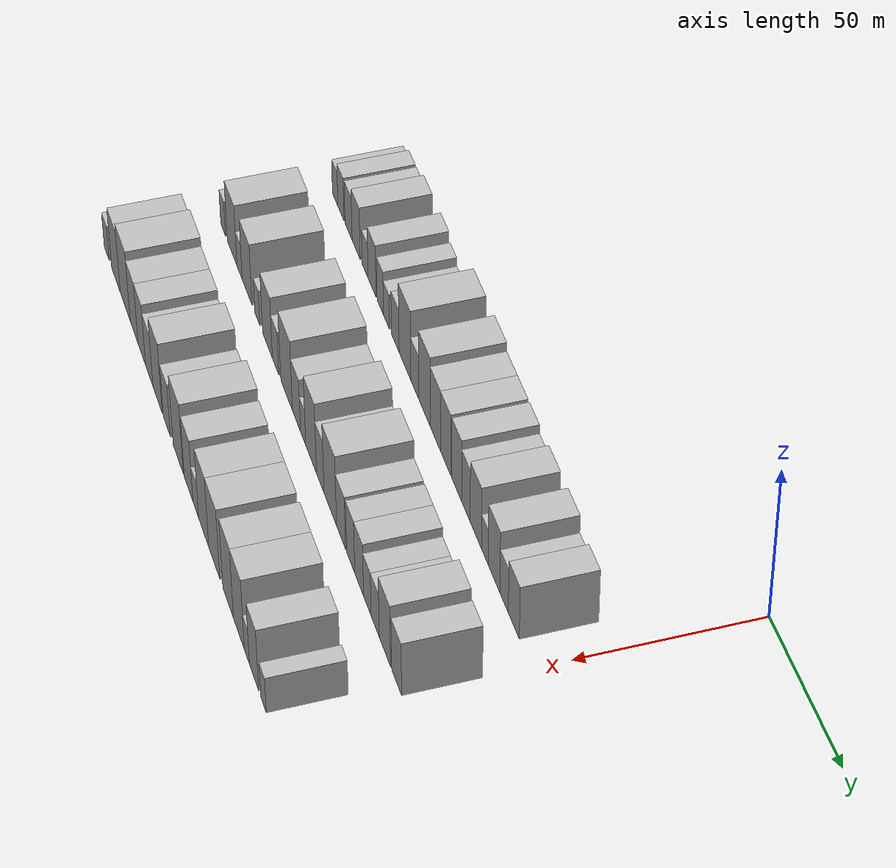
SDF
<sdf version="1.6">
 <world name="default">
  <model name="building_19">
   <static>1</static>
   <pose>50.0000 -178.0555 0 0.000000 0.000000 0.000000</pose>
   <link name="link">
    <pose>0 0 6.00 0 0 0</pose>
    <collision name="collision"><geometry><box><size>20.0000 5.5461 12.0000</size></box></geometry></collision>
    <visual name="visual">
     <cast_shadows>0</cast_shadows>
     <geometry><box><size>20.0000 5.5461 12.0000</size></box></geometry>
     <material>
      <script>
       <uri>model://HANNAS_wall/materials/scripts</uri>
       <uri>model://HANNAS_wall/materials/textures</uri>
       <name>vrc/HANNAS_wall</name>
      </script>
     </material>
    </visual>
   </link>
  </model>
  <model name="building_20">
   <static>1</static>
   <pose>50.0000 -172.1351 0 0.000000 0.000000 0.000000</pose>
   <link name="link">
    <pose>0 0 7.50 0 0 0</pose>
    <collision name="collision"><geometry><box><size>20.0000 6.2947 15.0000</size></box></geometry></collision>
    <visual name="visual">
     <cast_shadows>0</cast_shadows>
     <geometry><box><size>20.0000 6.2947 15.0000</size></box></geometry>
     <material>
      <script>
       <uri>model://HANNAS_wall/materials/scripts</uri>
       <uri>model://HANNAS_wall/materials/textures</uri>
       <name>vrc/HANNAS_wall</name>
      </script>
     </material>
    </visual>
   </link>
  </model>
  <model name="building_21">
   <static>1</static>
   <pose>50.0000 -164.4153 0 0.000000 0.000000 0.000000</pose>
   <link name="link">
    <pose>0 0 7.50 0 0 0</pose>
    <collision name="collision"><geometry><box><size>20.0000 7.1448 15.0000</size></box></geometry></collision>
    <visual name="visual">
     <cast_shadows>0</cast_shadows>
     <geometry><box><size>20.0000 7.1448 15.0000</size></box></geometry>
     <material>
      <script>
       <uri>model://HANNAS_wall/materials/scripts</uri>
       <uri>model://HANNAS_wall/materials/textures</uri>
       <name>vrc/HANNAS_wall</name>
      </script>
     </material>
    </visual>
   </link>
  </model>
  <model name="building_22">
   <static>1</static>
   <pose>50.0000 -156.8310 0 0.000000 0.000000 0.000000</pose>
   <link name="link">
    <pose>0 0 9.00 0 0 0</pose>
    <collision name="collision"><geometry><box><size>20.0000 8.0239 18.0000</size></box></geometry></collision>
    <visual name="visual">
     <cast_shadows>0</cast_shadows>
     <geometry><box><size>20.0000 8.0239 18.0000</size></box></geometry>
     <material>
      <script>
       <uri>model://HANNAS_wall/materials/scripts</uri>
       <uri>model://HANNAS_wall/materials/textures</uri>
       <name>vrc/HANNAS_wall</name>
      </script>
     </material>
    </visual>
   </link>
  </model>
  <model name="building_23">
   <static>1</static>
   <pose>50.0000 -147.9092 0 0.000000 0.000000 0.000000</pose>
   <link name="link">
    <pose>0 0 6.00 0 0 0</pose>
    <collision name="collision"><geometry><box><size>20.0000 5.8197 12.0000</size></box></geometry></collision>
    <visual name="visual">
     <cast_shadows>0</cast_shadows>
     <geometry><box><size>20.0000 5.8197 12.0000</size></box></geometry>
     <material>
      <script>
       <uri>model://HANNAS_wall/materials/scripts</uri>
       <uri>model://HANNAS_wall/materials/textures</uri>
       <name>vrc/HANNAS_wall</name>
      </script>
     </material>
    </visual>
   </link>
  </model>
  <model name="building_24">
   <static>1</static>
   <pose>50.0000 -141.1100 0 0.000000 0.000000 0.000000</pose>
   <link name="link">
    <pose>0 0 9.00 0 0 0</pose>
    <collision name="collision"><geometry><box><size>20.0000 7.7786 18.0000</size></box></geometry></collision>
    <visual name="visual">
     <cast_shadows>0</cast_shadows>
     <geometry><box><size>20.0000 7.7786 18.0000</size></box></geometry>
     <material>
      <script>
       <uri>model://HANNAS_wall/materials/scripts</uri>
       <uri>model://HANNAS_wall/materials/textures</uri>
       <name>vrc/HANNAS_wall</name>
      </script>
     </material>
    </visual>
   </link>
  </model>
  <model name="building_25">
   <static>1</static>
   <pose>50.0000 -133.1322 0 0.000000 0.000000 0.000000</pose>
   <link name="link">
    <pose>0 0 7.50 0 0 0</pose>
    <collision name="collision"><geometry><box><size>20.0000 6.1768 15.0000</size></box></geometry></collision>
    <visual name="visual">
     <cast_shadows>0</cast_shadows>
     <geometry><box><size>20.0000 6.1768 15.0000</size></box></geometry>
     <material>
      <script>
       <uri>model://HANNAS_wall/materials/scripts</uri>
       <uri>model://HANNAS_wall/materials/textures</uri>
       <name>vrc/HANNAS_wall</name>
      </script>
     </material>
    </visual>
   </link>
  </model>
  <model name="building_26">
   <static>1</static>
   <pose>50.0000 -127.1928 0 0.000000 0.000000 0.000000</pose>
   <link name="link">
    <pose>0 0 6.00 0 0 0</pose>
    <collision name="collision"><geometry><box><size>20.0000 5.7021 12.0000</size></box></geometry></collision>
    <visual name="visual">
     <cast_shadows>0</cast_shadows>
     <geometry><box><size>20.0000 5.7021 12.0000</size></box></geometry>
     <material>
      <script>
       <uri>model://HANNAS_wall/materials/scripts</uri>
       <uri>model://HANNAS_wall/materials/textures</uri>
       <name>vrc/HANNAS_wall</name>
      </script>
     </material>
    </visual>
   </link>
  </model>
  <model name="building_27">
   <static>1</static>
   <pose>50.0000 -118.7382 0 0.000000 0.000000 0.000000</pose>
   <link name="link">
    <pose>0 0 7.50 0 0 0</pose>
    <collision name="collision"><geometry><box><size>20.0000 7.2071 15.0000</size></box></geometry></collision>
    <visual name="visual">
     <cast_shadows>0</cast_shadows>
     <geometry><box><size>20.0000 7.2071 15.0000</size></box></geometry>
     <material>
      <script>
       <uri>model://HANNAS_wall/materials/scripts</uri>
       <uri>model://HANNAS_wall/materials/textures</uri>
       <name>vrc/HANNAS_wall</name>
      </script>
     </material>
    </visual>
   </link>
  </model>
  <model name="building_28">
   <static>1</static>
   <pose>50.0000 -109.6479 0 0.000000 0.000000 0.000000</pose>
   <link name="link">
    <pose>0 0 12.00 0 0 0</pose>
    <collision name="collision"><geometry><box><size>20.0000 10.9736 24.0000</size></box></geometry></collision>
    <visual name="visual">
     <cast_shadows>0</cast_shadows>
     <geometry><box><size>20.0000 10.9736 24.0000</size></box></geometry>
     <material>
      <script>
       <uri>model://HANNAS_wall/materials/scripts</uri>
       <uri>model://HANNAS_wall/materials/textures</uri>
       <name>vrc/HANNAS_wall</name>
      </script>
     </material>
    </visual>
   </link>
  </model>
  <model name="building_29">
   <static>1</static>
   <pose>50.0000 -100.4507 0 0.000000 0.000000 0.000000</pose>
   <link name="link">
    <pose>0 0 7.50 0 0 0</pose>
    <collision name="collision"><geometry><box><size>20.0000 7.4209 15.0000</size></box></geometry></collision>
    <visual name="visual">
     <cast_shadows>0</cast_shadows>
     <geometry><box><size>20.0000 7.4209 15.0000</size></box></geometry>
     <material>
      <script>
       <uri>model://HANNAS_wall/materials/scripts</uri>
       <uri>model://HANNAS_wall/materials/textures</uri>
       <name>vrc/HANNAS_wall</name>
      </script>
     </material>
    </visual>
   </link>
  </model>
  <model name="building_30">
   <static>1</static>
   <pose>50.0000 -91.4822 0 0.000000 0.000000 0.000000</pose>
   <link name="link">
    <pose>0 0 12.00 0 0 0</pose>
    <collision name="collision"><geometry><box><size>20.0000 10.5161 24.0000</size></box></geometry></collision>
    <visual name="visual">
     <cast_shadows>0</cast_shadows>
     <geometry><box><size>20.0000 10.5161 24.0000</size></box></geometry>
     <material>
      <script>
       <uri>model://HANNAS_wall/materials/scripts</uri>
       <uri>model://HANNAS_wall/materials/textures</uri>
       <name>vrc/HANNAS_wall</name>
      </script>
     </material>
    </visual>
   </link>
  </model>
  <model name="building_31">
   <static>1</static>
   <pose>50.0000 -81.6602 0 0.000000 0.000000 0.000000</pose>
   <link name="link">
    <pose>0 0 10.50 0 0 0</pose>
    <collision name="collision"><geometry><box><size>20.0000 9.1278 21.0000</size></box></geometry></collision>
    <visual name="visual">
     <cast_shadows>0</cast_shadows>
     <geometry><box><size>20.0000 9.1278 21.0000</size></box></geometry>
     <material>
      <script>
       <uri>model://HANNAS_wall/materials/scripts</uri>
       <uri>model://HANNAS_wall/materials/textures</uri>
       <name>vrc/HANNAS_wall</name>
      </script>
     </material>
    </visual>
   </link>
  </model>
  <model name="building_32">
   <static>1</static>
   <pose>50.0000 -72.5824 0 0.000000 0.000000 0.000000</pose>
   <link name="link">
    <pose>0 0 10.50 0 0 0</pose>
    <collision name="collision"><geometry><box><size>20.0000 9.0279 21.0000</size></box></geometry></collision>
    <visual name="visual">
     <cast_shadows>0</cast_shadows>
     <geometry><box><size>20.0000 9.0279 21.0000</size></box></geometry>
     <material>
      <script>
       <uri>model://HANNAS_wall/materials/scripts</uri>
       <uri>model://HANNAS_wall/materials/textures</uri>
       <name>vrc/HANNAS_wall</name>
      </script>
     </material>
    </visual>
   </link>
  </model>
  <model name="building_33">
   <static>1</static>
   <pose>50.0000 -62.8511 0 0.000000 0.000000 0.000000</pose>
   <link name="link">
    <pose>0 0 10.50 0 0 0</pose>
    <collision name="collision"><geometry><box><size>20.0000 8.4345 21.0000</size></box></geometry></collision>
    <visual name="visual">
     <cast_shadows>0</cast_shadows>
     <geometry><box><size>20.0000 8.4345 21.0000</size></box></geometry>
     <material>
      <script>
       <uri>model://HANNAS_wall/materials/scripts</uri>
       <uri>model://HANNAS_wall/materials/textures</uri>
       <name>vrc/HANNAS_wall</name>
      </script>
     </material>
    </visual>
   </link>
  </model>
  <model name="building_34">
   <static>1</static>
   <pose>50.0000 -54.9011 0 0.000000 0.000000 0.000000</pose>
   <link name="link">
    <pose>0 0 9.00 0 0 0</pose>
    <collision name="collision"><geometry><box><size>20.0000 7.4656 18.0000</size></box></geometry></collision>
    <visual name="visual">
     <cast_shadows>0</cast_shadows>
     <geometry><box><size>20.0000 7.4656 18.0000</size></box></geometry>
     <material>
      <script>
       <uri>model://HANNAS_wall/materials/scripts</uri>
       <uri>model://HANNAS_wall/materials/textures</uri>
       <name>vrc/HANNAS_wall</name>
      </script>
     </material>
    </visual>
   </link>
  </model>
  <model name="building_35">
   <static>1</static>
   <pose>50.0000 -46.3791 0 0.000000 0.000000 0.000000</pose>
   <link name="link">
    <pose>0 0 10.50 0 0 0</pose>
    <collision name="collision"><geometry><box><size>20.0000 9.5783 21.0000</size></box></geometry></collision>
    <visual name="visual">
     <cast_shadows>0</cast_shadows>
     <geometry><box><size>20.0000 9.5783 21.0000</size></box></geometry>
     <material>
      <script>
       <uri>model://HANNAS_wall/materials/scripts</uri>
       <uri>model://HANNAS_wall/materials/textures</uri>
       <name>vrc/HANNAS_wall</name>
      </script>
     </material>
    </visual>
   </link>
  </model>
  <model name="building_36">
   <static>1</static>
   <pose>50.0000 -38.7108 0 0.000000 0.000000 0.000000</pose>
   <link name="link">
    <pose>0 0 6.00 0 0 0</pose>
    <collision name="collision"><geometry><box><size>20.0000 5.7583 12.0000</size></box></geometry></collision>
    <visual name="visual">
     <cast_shadows>0</cast_shadows>
     <geometry><box><size>20.0000 5.7583 12.0000</size></box></geometry>
     <material>
      <script>
       <uri>model://HANNAS_wall/materials/scripts</uri>
       <uri>model://HANNAS_wall/materials/textures</uri>
       <name>vrc/HANNAS_wall</name>
      </script>
     </material>
    </visual>
   </link>
  </model>
  <model name="building_37">
   <static>1</static>
   <pose>50.0000 -30.9705 0 0.000000 0.000000 0.000000</pose>
   <link name="link">
    <pose>0 0 10.50 0 0 0</pose>
    <collision name="collision"><geometry><box><size>20.0000 9.7223 21.0000</size></box></geometry></collision>
    <visual name="visual">
     <cast_shadows>0</cast_shadows>
     <geometry><box><size>20.0000 9.7223 21.0000</size></box></geometry>
     <material>
      <script>
       <uri>model://HANNAS_wall/materials/scripts</uri>
       <uri>model://HANNAS_wall/materials/textures</uri>
       <name>vrc/HANNAS_wall</name>
      </script>
     </material>
    </visual>
   </link>
  </model>
  <model name="building_38">
   <static>1</static>
   <pose>50.0000 -22.6465 0 0.000000 0.000000 0.000000</pose>
   <link name="link">
    <pose>0 0 7.50 0 0 0</pose>
    <collision name="collision"><geometry><box><size>20.0000 6.9256 15.0000</size></box></geometry></collision>
    <visual name="visual">
     <cast_shadows>0</cast_shadows>
     <geometry><box><size>20.0000 6.9256 15.0000</size></box></geometry>
     <material>
      <script>
       <uri>model://HANNAS_wall/materials/scripts</uri>
       <uri>model://HANNAS_wall/materials/textures</uri>
       <name>vrc/HANNAS_wall</name>
      </script>
     </material>
    </visual>
   </link>
  </model>
  <model name="building_39">
   <static>1</static>
   <pose>50.0000 -14.6906 0 0.000000 0.000000 0.000000</pose>
   <link name="link">
    <pose>0 0 9.00 0 0 0</pose>
    <collision name="collision"><geometry><box><size>20.0000 8.9863 18.0000</size></box></geometry></collision>
    <visual name="visual">
     <cast_shadows>0</cast_shadows>
     <geometry><box><size>20.0000 8.9863 18.0000</size></box></geometry>
     <material>
      <script>
       <uri>model://HANNAS_wall/materials/scripts</uri>
       <uri>model://HANNAS_wall/materials/textures</uri>
       <name>vrc/HANNAS_wall</name>
      </script>
     </material>
    </visual>
   </link>
  </model>
  <model name="building_97">
   <static>1</static>
   <pose>82.0000 -174.7247 0 0.000000 0.000000 0.000000</pose>
   <link name="link">
    <pose>0 0 6.00 0 0 0</pose>
    <collision name="collision"><geometry><box><size>20.0000 5.1894 12.0000</size></box></geometry></collision>
    <visual name="visual">
     <cast_shadows>0</cast_shadows>
     <geometry><box><size>20.0000 5.1894 12.0000</size></box></geometry>
     <material>
      <script>
       <uri>model://HANNAS_wall/materials/scripts</uri>
       <uri>model://HANNAS_wall/materials/textures</uri>
       <name>vrc/HANNAS_wall</name>
      </script>
     </material>
    </visual>
   </link>
  </model>
  <model name="building_98">
   <static>1</static>
   <pose>82.0000 -164.8907 0 0.000000 0.000000 0.000000</pose>
   <link name="link">
    <pose>0 0 10.50 0 0 0</pose>
    <collision name="collision"><geometry><box><size>20.0000 10.4786 21.0000</size></box></geometry></collision>
    <visual name="visual">
     <cast_shadows>0</cast_shadows>
     <geometry><box><size>20.0000 10.4786 21.0000</size></box></geometry>
     <material>
      <script>
       <uri>model://HANNAS_wall/materials/scripts</uri>
       <uri>model://HANNAS_wall/materials/textures</uri>
       <name>vrc/HANNAS_wall</name>
      </script>
     </material>
    </visual>
   </link>
  </model>
  <model name="building_99">
   <static>1</static>
   <pose>82.0000 -156.8364 0 0.000000 0.000000 0.000000</pose>
   <link name="link">
    <pose>0 0 6.00 0 0 0</pose>
    <collision name="collision"><geometry><box><size>20.0000 5.6300 12.0000</size></box></geometry></collision>
    <visual name="visual">
     <cast_shadows>0</cast_shadows>
     <geometry><box><size>20.0000 5.6300 12.0000</size></box></geometry>
     <material>
      <script>
       <uri>model://HANNAS_wall/materials/scripts</uri>
       <uri>model://HANNAS_wall/materials/textures</uri>
       <name>vrc/HANNAS_wall</name>
      </script>
     </material>
    </visual>
   </link>
  </model>
  <model name="building_100">
   <static>1</static>
   <pose>82.0000 -148.7913 0 0.000000 0.000000 0.000000</pose>
   <link name="link">
    <pose>0 0 10.50 0 0 0</pose>
    <collision name="collision"><geometry><box><size>20.0000 10.4603 21.0000</size></box></geometry></collision>
    <visual name="visual">
     <cast_shadows>0</cast_shadows>
     <geometry><box><size>20.0000 10.4603 21.0000</size></box></geometry>
     <material>
      <script>
       <uri>model://HANNAS_wall/materials/scripts</uri>
       <uri>model://HANNAS_wall/materials/textures</uri>
       <name>vrc/HANNAS_wall</name>
      </script>
     </material>
    </visual>
   </link>
  </model>
  <model name="building_101">
   <static>1</static>
   <pose>82.0000 -137.9452 0 0.000000 0.000000 0.000000</pose>
   <link name="link">
    <pose>0 0 6.00 0 0 0</pose>
    <collision name="collision"><geometry><box><size>20.0000 5.2318 12.0000</size></box></geometry></collision>
    <visual name="visual">
     <cast_shadows>0</cast_shadows>
     <geometry><box><size>20.0000 5.2318 12.0000</size></box></geometry>
     <material>
      <script>
       <uri>model://HANNAS_wall/materials/scripts</uri>
       <uri>model://HANNAS_wall/materials/textures</uri>
       <name>vrc/HANNAS_wall</name>
      </script>
     </material>
    </visual>
   </link>
  </model>
  <model name="building_102">
   <static>1</static>
   <pose>82.0000 -127.3140 0 0.000000 0.000000 0.000000</pose>
   <link name="link">
    <pose>0 0 10.50 0 0 0</pose>
    <collision name="collision"><geometry><box><size>20.0000 10.0307 21.0000</size></box></geometry></collision>
    <visual name="visual">
     <cast_shadows>0</cast_shadows>
     <geometry><box><size>20.0000 10.0307 21.0000</size></box></geometry>
     <material>
      <script>
       <uri>model://HANNAS_wall/materials/scripts</uri>
       <uri>model://HANNAS_wall/materials/textures</uri>
       <name>vrc/HANNAS_wall</name>
      </script>
     </material>
    </visual>
   </link>
  </model>
  <model name="building_103">
   <static>1</static>
   <pose>82.0000 -118.9859 0 0.000000 0.000000 0.000000</pose>
   <link name="link">
    <pose>0 0 7.50 0 0 0</pose>
    <collision name="collision"><geometry><box><size>20.0000 6.6254 15.0000</size></box></geometry></collision>
    <visual name="visual">
     <cast_shadows>0</cast_shadows>
     <geometry><box><size>20.0000 6.6254 15.0000</size></box></geometry>
     <material>
      <script>
       <uri>model://HANNAS_wall/materials/scripts</uri>
       <uri>model://HANNAS_wall/materials/textures</uri>
       <name>vrc/HANNAS_wall</name>
      </script>
     </material>
    </visual>
   </link>
  </model>
  <model name="building_104">
   <static>1</static>
   <pose>82.0000 -107.8190 0 0.000000 0.000000 0.000000</pose>
   <link name="link">
    <pose>0 0 12.00 0 0 0</pose>
    <collision name="collision"><geometry><box><size>20.0000 11.7084 24.0000</size></box></geometry></collision>
    <visual name="visual">
     <cast_shadows>0</cast_shadows>
     <geometry><box><size>20.0000 11.7084 24.0000</size></box></geometry>
     <material>
      <script>
       <uri>model://HANNAS_wall/materials/scripts</uri>
       <uri>model://HANNAS_wall/materials/textures</uri>
       <name>vrc/HANNAS_wall</name>
      </script>
     </material>
    </visual>
   </link>
  </model>
  <model name="building_105">
   <static>1</static>
   <pose>82.0000 -97.9359 0 0.000000 0.000000 0.000000</pose>
   <link name="link">
    <pose>0 0 9.00 0 0 0</pose>
    <collision name="collision"><geometry><box><size>20.0000 8.0577 18.0000</size></box></geometry></collision>
    <visual name="visual">
     <cast_shadows>0</cast_shadows>
     <geometry><box><size>20.0000 8.0577 18.0000</size></box></geometry>
     <material>
      <script>
       <uri>model://HANNAS_wall/materials/scripts</uri>
       <uri>model://HANNAS_wall/materials/textures</uri>
       <name>vrc/HANNAS_wall</name>
      </script>
     </material>
    </visual>
   </link>
  </model>
  <model name="building_106">
   <static>1</static>
   <pose>82.0000 -91.3697 0 0.000000 0.000000 0.000000</pose>
   <link name="link">
    <pose>0 0 6.00 0 0 0</pose>
    <collision name="collision"><geometry><box><size>20.0000 5.0747 12.0000</size></box></geometry></collision>
    <visual name="visual">
     <cast_shadows>0</cast_shadows>
     <geometry><box><size>20.0000 5.0747 12.0000</size></box></geometry>
     <material>
      <script>
       <uri>model://HANNAS_wall/materials/scripts</uri>
       <uri>model://HANNAS_wall/materials/textures</uri>
       <name>vrc/HANNAS_wall</name>
      </script>
     </material>
    </visual>
   </link>
  </model>
  <model name="building_107">
   <static>1</static>
   <pose>82.0000 -83.6005 0 0.000000 0.000000 0.000000</pose>
   <link name="link">
    <pose>0 0 12.00 0 0 0</pose>
    <collision name="collision"><geometry><box><size>20.0000 10.4637 24.0000</size></box></geometry></collision>
    <visual name="visual">
     <cast_shadows>0</cast_shadows>
     <geometry><box><size>20.0000 10.4637 24.0000</size></box></geometry>
     <material>
      <script>
       <uri>model://HANNAS_wall/materials/scripts</uri>
       <uri>model://HANNAS_wall/materials/textures</uri>
       <name>vrc/HANNAS_wall</name>
      </script>
     </material>
    </visual>
   </link>
  </model>
  <model name="building_108">
   <static>1</static>
   <pose>82.0000 -74.7323 0 0.000000 0.000000 0.000000</pose>
   <link name="link">
    <pose>0 0 9.00 0 0 0</pose>
    <collision name="collision"><geometry><box><size>20.0000 7.2727 18.0000</size></box></geometry></collision>
    <visual name="visual">
     <cast_shadows>0</cast_shadows>
     <geometry><box><size>20.0000 7.2727 18.0000</size></box></geometry>
     <material>
      <script>
       <uri>model://HANNAS_wall/materials/scripts</uri>
       <uri>model://HANNAS_wall/materials/textures</uri>
       <name>vrc/HANNAS_wall</name>
      </script>
     </material>
    </visual>
   </link>
  </model>
  <model name="building_109">
   <static>1</static>
   <pose>82.0000 -65.1502 0 0.000000 0.000000 0.000000</pose>
   <link name="link">
    <pose>0 0 12.00 0 0 0</pose>
    <collision name="collision"><geometry><box><size>20.0000 11.8913 24.0000</size></box></geometry></collision>
    <visual name="visual">
     <cast_shadows>0</cast_shadows>
     <geometry><box><size>20.0000 11.8913 24.0000</size></box></geometry>
     <material>
      <script>
       <uri>model://HANNAS_wall/materials/scripts</uri>
       <uri>model://HANNAS_wall/materials/textures</uri>
       <name>vrc/HANNAS_wall</name>
      </script>
     </material>
    </visual>
   </link>
  </model>
  <model name="building_110">
   <static>1</static>
   <pose>82.0000 -55.0223 0 0.000000 0.000000 0.000000</pose>
   <link name="link">
    <pose>0 0 9.00 0 0 0</pose>
    <collision name="collision"><geometry><box><size>20.0000 8.3645 18.0000</size></box></geometry></collision>
    <visual name="visual">
     <cast_shadows>0</cast_shadows>
     <geometry><box><size>20.0000 8.3645 18.0000</size></box></geometry>
     <material>
      <script>
       <uri>model://HANNAS_wall/materials/scripts</uri>
       <uri>model://HANNAS_wall/materials/textures</uri>
       <name>vrc/HANNAS_wall</name>
      </script>
     </material>
    </visual>
   </link>
  </model>
  <model name="building_111">
   <static>1</static>
   <pose>82.0000 -46.1151 0 0.000000 0.000000 0.000000</pose>
   <link name="link">
    <pose>0 0 9.00 0 0 0</pose>
    <collision name="collision"><geometry><box><size>20.0000 7.4499 18.0000</size></box></geometry></collision>
    <visual name="visual">
     <cast_shadows>0</cast_shadows>
     <geometry><box><size>20.0000 7.4499 18.0000</size></box></geometry>
     <material>
      <script>
       <uri>model://HANNAS_wall/materials/scripts</uri>
       <uri>model://HANNAS_wall/materials/textures</uri>
       <name>vrc/HANNAS_wall</name>
      </script>
     </material>
    </visual>
   </link>
  </model>
  <model name="building_112">
   <static>1</static>
   <pose>82.0000 -38.3799 0 0.000000 0.000000 0.000000</pose>
   <link name="link">
    <pose>0 0 9.00 0 0 0</pose>
    <collision name="collision"><geometry><box><size>20.0000 8.0205 18.0000</size></box></geometry></collision>
    <visual name="visual">
     <cast_shadows>0</cast_shadows>
     <geometry><box><size>20.0000 8.0205 18.0000</size></box></geometry>
     <material>
      <script>
       <uri>model://HANNAS_wall/materials/scripts</uri>
       <uri>model://HANNAS_wall/materials/textures</uri>
       <name>vrc/HANNAS_wall</name>
      </script>
     </material>
    </visual>
   </link>
  </model>
  <model name="building_113">
   <static>1</static>
   <pose>82.0000 -30.9888 0 0.000000 0.000000 0.000000</pose>
   <link name="link">
    <pose>0 0 7.50 0 0 0</pose>
    <collision name="collision"><geometry><box><size>20.0000 6.7617 15.0000</size></box></geometry></collision>
    <visual name="visual">
     <cast_shadows>0</cast_shadows>
     <geometry><box><size>20.0000 6.7617 15.0000</size></box></geometry>
     <material>
      <script>
       <uri>model://HANNAS_wall/materials/scripts</uri>
       <uri>model://HANNAS_wall/materials/textures</uri>
       <name>vrc/HANNAS_wall</name>
      </script>
     </material>
    </visual>
   </link>
  </model>
  <model name="building_114">
   <static>1</static>
   <pose>82.0000 -23.9843 0 0.000000 0.000000 0.000000</pose>
   <link name="link">
    <pose>0 0 7.50 0 0 0</pose>
    <collision name="collision"><geometry><box><size>20.0000 7.2473 15.0000</size></box></geometry></collision>
    <visual name="visual">
     <cast_shadows>0</cast_shadows>
     <geometry><box><size>20.0000 7.2473 15.0000</size></box></geometry>
     <material>
      <script>
       <uri>model://HANNAS_wall/materials/scripts</uri>
       <uri>model://HANNAS_wall/materials/textures</uri>
       <name>vrc/HANNAS_wall</name>
      </script>
     </material>
    </visual>
   </link>
  </model>
  <model name="building_115">
   <static>1</static>
   <pose>82.0000 -15.3834 0 0.000000 0.000000 0.000000</pose>
   <link name="link">
    <pose>0 0 10.50 0 0 0</pose>
    <collision name="collision"><geometry><box><size>20.0000 9.9544 21.0000</size></box></geometry></collision>
    <visual name="visual">
     <cast_shadows>0</cast_shadows>
     <geometry><box><size>20.0000 9.9544 21.0000</size></box></geometry>
     <material>
      <script>
       <uri>model://HANNAS_wall/materials/scripts</uri>
       <uri>model://HANNAS_wall/materials/textures</uri>
       <name>vrc/HANNAS_wall</name>
      </script>
     </material>
    </visual>
   </link>
  </model>
  <model name="building_116">
   <static>1</static>
   <pose>82.0000 -5.1328 0 0.000000 0.000000 0.000000</pose>
   <link name="link">
    <pose>0 0 9.00 0 0 0</pose>
    <collision name="collision"><geometry><box><size>20.0000 8.5469 18.0000</size></box></geometry></collision>
    <visual name="visual">
     <cast_shadows>0</cast_shadows>
     <geometry><box><size>20.0000 8.5469 18.0000</size></box></geometry>
     <material>
      <script>
       <uri>model://HANNAS_wall/materials/scripts</uri>
       <uri>model://HANNAS_wall/materials/textures</uri>
       <name>vrc/HANNAS_wall</name>
      </script>
     </material>
    </visual>
   </link>
  </model>
  <model name="building_180">
   <static>1</static>
   <pose>114.0000 -174.2219 0 0.000000 0.000000 0.000000</pose>
   <link name="link">
    <pose>0 0 6.00 0 0 0</pose>
    <collision name="collision"><geometry><box><size>20.0000 5.8787 12.0000</size></box></geometry></collision>
    <visual name="visual">
     <cast_shadows>0</cast_shadows>
     <geometry><box><size>20.0000 5.8787 12.0000</size></box></geometry>
     <material>
      <script>
       <uri>model://HANNAS_wall/materials/scripts</uri>
       <uri>model://HANNAS_wall/materials/textures</uri>
       <name>vrc/HANNAS_wall</name>
      </script>
     </material>
    </visual>
   </link>
  </model>
  <model name="building_181">
   <static>1</static>
   <pose>114.0000 -163.2017 0 0.000000 0.000000 0.000000</pose>
   <link name="link">
    <pose>0 0 10.50 0 0 0</pose>
    <collision name="collision"><geometry><box><size>20.0000 10.1616 21.0000</size></box></geometry></collision>
    <visual name="visual">
     <cast_shadows>0</cast_shadows>
     <geometry><box><size>20.0000 10.1616 21.0000</size></box></geometry>
     <material>
      <script>
       <uri>model://HANNAS_wall/materials/scripts</uri>
       <uri>model://HANNAS_wall/materials/textures</uri>
       <name>vrc/HANNAS_wall</name>
      </script>
     </material>
    </visual>
   </link>
  </model>
  <model name="building_182">
   <static>1</static>
   <pose>114.0000 -152.3618 0 0.000000 0.000000 0.000000</pose>
   <link name="link">
    <pose>0 0 12.00 0 0 0</pose>
    <collision name="collision"><geometry><box><size>20.0000 11.5183 24.0000</size></box></geometry></collision>
    <visual name="visual">
     <cast_shadows>0</cast_shadows>
     <geometry><box><size>20.0000 11.5183 24.0000</size></box></geometry>
     <material>
      <script>
       <uri>model://HANNAS_wall/materials/scripts</uri>
       <uri>model://HANNAS_wall/materials/textures</uri>
       <name>vrc/HANNAS_wall</name>
      </script>
     </material>
    </visual>
   </link>
  </model>
  <model name="building_183">
   <static>1</static>
   <pose>114.0000 -142.0453 0 0.000000 0.000000 0.000000</pose>
   <link name="link">
    <pose>0 0 10.50 0 0 0</pose>
    <collision name="collision"><geometry><box><size>20.0000 9.1147 21.0000</size></box></geometry></collision>
    <visual name="visual">
     <cast_shadows>0</cast_shadows>
     <geometry><box><size>20.0000 9.1147 21.0000</size></box></geometry>
     <material>
      <script>
       <uri>model://HANNAS_wall/materials/scripts</uri>
       <uri>model://HANNAS_wall/materials/textures</uri>
       <name>vrc/HANNAS_wall</name>
      </script>
     </material>
    </visual>
   </link>
  </model>
  <model name="building_184">
   <static>1</static>
   <pose>114.0000 -133.2280 0 0.000000 0.000000 0.000000</pose>
   <link name="link">
    <pose>0 0 10.50 0 0 0</pose>
    <collision name="collision"><geometry><box><size>20.0000 8.5200 21.0000</size></box></geometry></collision>
    <visual name="visual">
     <cast_shadows>0</cast_shadows>
     <geometry><box><size>20.0000 8.5200 21.0000</size></box></geometry>
     <material>
      <script>
       <uri>model://HANNAS_wall/materials/scripts</uri>
       <uri>model://HANNAS_wall/materials/textures</uri>
       <name>vrc/HANNAS_wall</name>
      </script>
     </material>
    </visual>
   </link>
  </model>
  <model name="building_185">
   <static>1</static>
   <pose>114.0000 -124.8440 0 0.000000 0.000000 0.000000</pose>
   <link name="link">
    <pose>0 0 9.00 0 0 0</pose>
    <collision name="collision"><geometry><box><size>20.0000 8.2478 18.0000</size></box></geometry></collision>
    <visual name="visual">
     <cast_shadows>0</cast_shadows>
     <geometry><box><size>20.0000 8.2478 18.0000</size></box></geometry>
     <material>
      <script>
       <uri>model://HANNAS_wall/materials/scripts</uri>
       <uri>model://HANNAS_wall/materials/textures</uri>
       <name>vrc/HANNAS_wall</name>
      </script>
     </material>
    </visual>
   </link>
  </model>
  <model name="building_186">
   <static>1</static>
   <pose>114.0000 -115.5349 0 0.000000 0.000000 0.000000</pose>
   <link name="link">
    <pose>0 0 12.00 0 0 0</pose>
    <collision name="collision"><geometry><box><size>20.0000 10.3704 24.0000</size></box></geometry></collision>
    <visual name="visual">
     <cast_shadows>0</cast_shadows>
     <geometry><box><size>20.0000 10.3704 24.0000</size></box></geometry>
     <material>
      <script>
       <uri>model://HANNAS_wall/materials/scripts</uri>
       <uri>model://HANNAS_wall/materials/textures</uri>
       <name>vrc/HANNAS_wall</name>
      </script>
     </material>
    </visual>
   </link>
  </model>
  <model name="building_187">
   <static>1</static>
   <pose>114.0000 -105.4375 0 0.000000 0.000000 0.000000</pose>
   <link name="link">
    <pose>0 0 9.00 0 0 0</pose>
    <collision name="collision"><geometry><box><size>20.0000 7.8245 18.0000</size></box></geometry></collision>
    <visual name="visual">
     <cast_shadows>0</cast_shadows>
     <geometry><box><size>20.0000 7.8245 18.0000</size></box></geometry>
     <material>
      <script>
       <uri>model://HANNAS_wall/materials/scripts</uri>
       <uri>model://HANNAS_wall/materials/textures</uri>
       <name>vrc/HANNAS_wall</name>
      </script>
     </material>
    </visual>
   </link>
  </model>
  <model name="building_188">
   <static>1</static>
   <pose>114.0000 -93.0769 0 0.000000 0.000000 0.000000</pose>
   <link name="link">
    <pose>0 0 12.00 0 0 0</pose>
    <collision name="collision"><geometry><box><size>20.0000 10.8966 24.0000</size></box></geometry></collision>
    <visual name="visual">
     <cast_shadows>0</cast_shadows>
     <geometry><box><size>20.0000 10.8966 24.0000</size></box></geometry>
     <material>
      <script>
       <uri>model://HANNAS_wall/materials/scripts</uri>
       <uri>model://HANNAS_wall/materials/textures</uri>
       <name>vrc/HANNAS_wall</name>
      </script>
     </material>
    </visual>
   </link>
  </model>
  <model name="building_189">
   <static>1</static>
   <pose>114.0000 -82.0679 0 0.000000 0.000000 0.000000</pose>
   <link name="link">
    <pose>0 0 10.50 0 0 0</pose>
    <collision name="collision"><geometry><box><size>20.0000 9.1215 21.0000</size></box></geometry></collision>
    <visual name="visual">
     <cast_shadows>0</cast_shadows>
     <geometry><box><size>20.0000 9.1215 21.0000</size></box></geometry>
     <material>
      <script>
       <uri>model://HANNAS_wall/materials/scripts</uri>
       <uri>model://HANNAS_wall/materials/textures</uri>
       <name>vrc/HANNAS_wall</name>
      </script>
     </material>
    </visual>
   </link>
  </model>
  <model name="building_190">
   <static>1</static>
   <pose>114.0000 -74.5364 0 0.000000 0.000000 0.000000</pose>
   <link name="link">
    <pose>0 0 6.00 0 0 0</pose>
    <collision name="collision"><geometry><box><size>20.0000 5.9415 12.0000</size></box></geometry></collision>
    <visual name="visual">
     <cast_shadows>0</cast_shadows>
     <geometry><box><size>20.0000 5.9415 12.0000</size></box></geometry>
     <material>
      <script>
       <uri>model://HANNAS_wall/materials/scripts</uri>
       <uri>model://HANNAS_wall/materials/textures</uri>
       <name>vrc/HANNAS_wall</name>
      </script>
     </material>
    </visual>
   </link>
  </model>
  <model name="building_191">
   <static>1</static>
   <pose>114.0000 -66.3749 0 0.000000 0.000000 0.000000</pose>
   <link name="link">
    <pose>0 0 12.00 0 0 0</pose>
    <collision name="collision"><geometry><box><size>20.0000 10.3814 24.0000</size></box></geometry></collision>
    <visual name="visual">
     <cast_shadows>0</cast_shadows>
     <geometry><box><size>20.0000 10.3814 24.0000</size></box></geometry>
     <material>
      <script>
       <uri>model://HANNAS_wall/materials/scripts</uri>
       <uri>model://HANNAS_wall/materials/textures</uri>
       <name>vrc/HANNAS_wall</name>
      </script>
     </material>
    </visual>
   </link>
  </model>
  <model name="building_192">
   <static>1</static>
   <pose>114.0000 -55.4958 0 0.000000 0.000000 0.000000</pose>
   <link name="link">
    <pose>0 0 12.00 0 0 0</pose>
    <collision name="collision"><geometry><box><size>20.0000 11.3769 24.0000</size></box></geometry></collision>
    <visual name="visual">
     <cast_shadows>0</cast_shadows>
     <geometry><box><size>20.0000 11.3769 24.0000</size></box></geometry>
     <material>
      <script>
       <uri>model://HANNAS_wall/materials/scripts</uri>
       <uri>model://HANNAS_wall/materials/textures</uri>
       <name>vrc/HANNAS_wall</name>
      </script>
     </material>
    </visual>
   </link>
  </model>
  <model name="building_193">
   <static>1</static>
   <pose>114.0000 -41.5780 0 0.000000 0.000000 0.000000</pose>
   <link name="link">
    <pose>0 0 12.00 0 0 0</pose>
    <collision name="collision"><geometry><box><size>20.0000 10.4586 24.0000</size></box></geometry></collision>
    <visual name="visual">
     <cast_shadows>0</cast_shadows>
     <geometry><box><size>20.0000 10.4586 24.0000</size></box></geometry>
     <material>
      <script>
       <uri>model://HANNAS_wall/materials/scripts</uri>
       <uri>model://HANNAS_wall/materials/textures</uri>
       <name>vrc/HANNAS_wall</name>
      </script>
     </material>
    </visual>
   </link>
  </model>
  <model name="building_194">
   <static>1</static>
   <pose>114.0000 -31.0064 0 0.000000 0.000000 0.000000</pose>
   <link name="link">
    <pose>0 0 12.00 0 0 0</pose>
    <collision name="collision"><geometry><box><size>20.0000 10.6845 24.0000</size></box></geometry></collision>
    <visual name="visual">
     <cast_shadows>0</cast_shadows>
     <geometry><box><size>20.0000 10.6845 24.0000</size></box></geometry>
     <material>
      <script>
       <uri>model://HANNAS_wall/materials/scripts</uri>
       <uri>model://HANNAS_wall/materials/textures</uri>
       <name>vrc/HANNAS_wall</name>
      </script>
     </material>
    </visual>
   </link>
  </model>
  <model name="building_195">
   <static>1</static>
   <pose>114.0000 -23.2262 0 0.000000 0.000000 0.000000</pose>
   <link name="link">
    <pose>0 0 6.00 0 0 0</pose>
    <collision name="collision"><geometry><box><size>20.0000 4.8758 12.0000</size></box></geometry></collision>
    <visual name="visual">
     <cast_shadows>0</cast_shadows>
     <geometry><box><size>20.0000 4.8758 12.0000</size></box></geometry>
     <material>
      <script>
       <uri>model://HANNAS_wall/materials/scripts</uri>
       <uri>model://HANNAS_wall/materials/textures</uri>
       <name>vrc/HANNAS_wall</name>
      </script>
     </material>
    </visual>
   </link>
  </model>
  <model name="building_196">
   <static>1</static>
   <pose>114.0000 -16.3586 0 0.000000 0.000000 0.000000</pose>
   <link name="link">
    <pose>0 0 10.50 0 0 0</pose>
    <collision name="collision"><geometry><box><size>20.0000 8.8594 21.0000</size></box></geometry></collision>
    <visual name="visual">
     <cast_shadows>0</cast_shadows>
     <geometry><box><size>20.0000 8.8594 21.0000</size></box></geometry>
     <material>
      <script>
       <uri>model://HANNAS_wall/materials/scripts</uri>
       <uri>model://HANNAS_wall/materials/textures</uri>
       <name>vrc/HANNAS_wall</name>
      </script>
     </material>
    </visual>
   </link>
  </model>
  <model name="building_197">
   <static>1</static>
   <pose>114.0000 -7.3266 0 0.000000 0.000000 0.000000</pose>
   <link name="link">
    <pose>0 0 6.00 0 0 0</pose>
    <collision name="collision"><geometry><box><size>20.0000 5.2048 12.0000</size></box></geometry></collision>
    <visual name="visual">
     <cast_shadows>0</cast_shadows>
     <geometry><box><size>20.0000 5.2048 12.0000</size></box></geometry>
     <material>
      <script>
       <uri>model://HANNAS_wall/materials/scripts</uri>
       <uri>model://HANNAS_wall/materials/textures</uri>
       <name>vrc/HANNAS_wall</name>
      </script>
     </material>
    </visual>
   </link>
  </model>
 </world>
</sdf>
